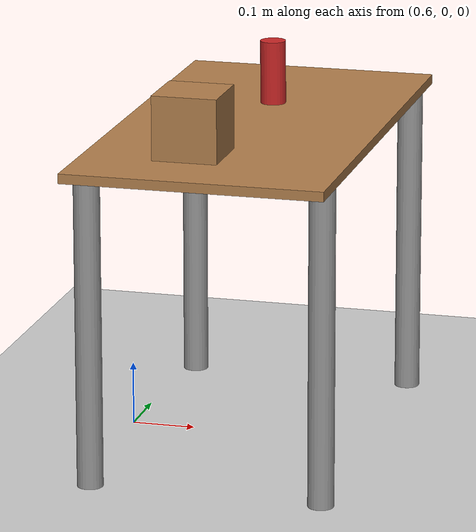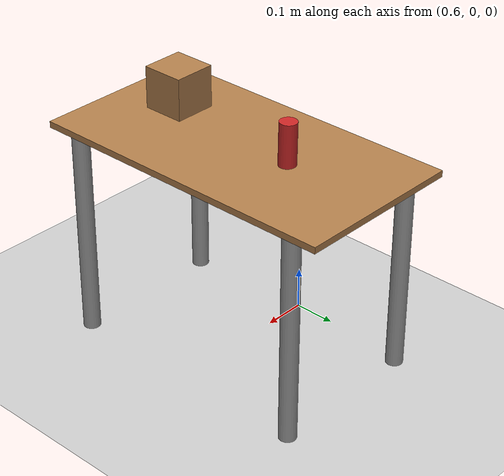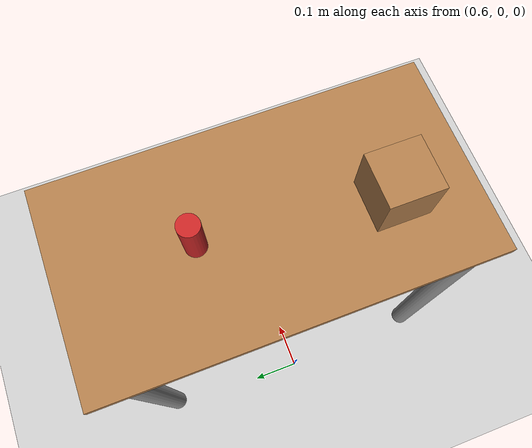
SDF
<sdf version="1.6">
 <world name="stereo_objects_world">
  <scene><ambient>0 0 0 1</ambient><shadows>0</shadows><background>0.7 0.7 0.7 1</background></scene>
  <light name="sun" type="directional">
   <pose>0 0 10 0 -0 0</pose>
   <diffuse>0.8 0.8 0.8 1</diffuse>
   <specular>0.2 0.2 0.2 1</specular>
   <attenuation>
    <range>1000</range>
    <constant>0.9</constant>
    <linear>0.01</linear>
    <quadratic>0.001</quadratic>
   </attenuation>
   <direction>-0.5 0.1 -0.9</direction>
  </light>
  <model name="ground_plane">
   <static>1</static>
   <link name="link">
    <collision name="collision">
     <geometry><plane><normal>0 0 1</normal><size>100 100</size></plane></geometry>
     <surface><friction><ode><mu>100</mu><mu2>50</mu2></ode></friction></surface>
    </collision>
    <visual name="visual">
     <cast_shadows>0</cast_shadows>
     <geometry><plane><normal>0 0 1</normal><size>100 100</size></plane></geometry>
     <material>
      <script><uri>file://media/materials/scripts/gazebo.material</uri><name>Gazebo/Grey</name></script>
     </material>
    </visual>
   </link>
  </model>
  <model name="table">
   <static>1</static>
   <link name="link">
    <collision name="surface">
     <pose>0 0 0.5 0 -0 0</pose>
     <geometry><box><size>0.75 0.4 0.015</size></box></geometry>
     <surface><friction><ode><mu>0.6</mu><mu2>0.6</mu2></ode></friction></surface>
    </collision>
    <visual name="visual1">
     <pose>0 0 0.5 0 -0 0</pose>
     <geometry><box><size>0.75 0.4 0.015</size></box></geometry>
     <material>
      <script><uri>file://media/materials/scripts/gazebo.material</uri><name>Gazebo/Wood</name></script>
     </material>
    </visual>
    <collision name="front_left_leg">
     <pose>0.3 0.18 0.25 0 -0 0</pose>
     <geometry><cylinder><radius>0.02</radius><length>0.5</length></cylinder></geometry>
    </collision>
    <visual name="front_left_leg">
     <pose>0.3 0.18 0.25 0 -0 0</pose>
     <geometry><cylinder><radius>0.02</radius><length>0.5</length></cylinder></geometry>
     <material>
      <script><uri>file://media/materials/scripts/gazebo.material</uri><name>Gazebo/Grey</name></script>
     </material>
    </visual>
    <collision name="front_right_leg">
     <pose>0.3 -0.18 0.25 0 -0 0</pose>
     <geometry><cylinder><radius>0.02</radius><length>0.5</length></cylinder></geometry>
    </collision>
    <visual name="front_right_leg">
     <pose>0.3 -0.18 0.25 0 -0 0</pose>
     <geometry><cylinder><radius>0.02</radius><length>0.5</length></cylinder></geometry>
     <material>
      <script><uri>file://media/materials/scripts/gazebo.material</uri><name>Gazebo/Grey</name></script>
     </material>
    </visual>
    <collision name="back_right_leg">
     <pose>-0.3 -0.18 0.25 0 -0 0</pose>
     <geometry><cylinder><radius>0.02</radius><length>0.5</length></cylinder></geometry>
    </collision>
    <visual name="back_right_leg">
     <pose>-0.3 -0.18 0.25 0 -0 0</pose>
     <geometry><cylinder><radius>0.02</radius><length>0.5</length></cylinder></geometry>
     <material>
      <script><uri>file://media/materials/scripts/gazebo.material</uri><name>Gazebo/Grey</name></script>
     </material>
    </visual>
    <collision name="back_left_leg">
     <pose>-0.3 0.18 0.25 0 -0 0</pose>
     <geometry><cylinder><radius>0.02</radius><length>0.5</length></cylinder></geometry>
    </collision>
    <visual name="back_left_leg">
     <pose>-0.3 0.18 0.25 0 -0 0</pose>
     <geometry><cylinder><radius>0.02</radius><length>0.5</length></cylinder></geometry>
     <material>
      <script><uri>file://media/materials/scripts/gazebo.material</uri><name>Gazebo/Grey</name></script>
     </material>
    </visual>
   </link>
   <pose>0.8 0 0 0 0 -1.57</pose>
  </model>
  <model name="wooden_peg">
   <link name="link">
    <pose>0 0 0.05 0 -0 0</pose>
    <inertial>
     <mass>0.0175</mass>
     <inertia>
      <ixx>9.74923e-06</ixx>
      <ixy>0</ixy>
      <ixz>0</ixz>
      <iyy>9.74923e-06</iyy>
      <iyz>0</iyz>
      <izz>8.31797e-07</izz>
     </inertia>
    </inertial>
    <collision name="collision">
     <geometry><cylinder><radius>0.02</radius><length>0.1</length></cylinder></geometry>
     <surface>
      <contact>
       <poissons_ratio>0.347</poissons_ratio>
       <elastic_modulus>8.8e+09</elastic_modulus>
       <ode><kp>100000</kp><kd>100</kd><max_vel>100</max_vel><min_depth>0.001</min_depth></ode>
      </contact>
      <friction>
       <torsional>
        <coefficient>1</coefficient>
        <use_patch_radius>0</use_patch_radius>
        <surface_radius>0.01</surface_radius>
       </torsional>
      </friction>
     </surface>
    </collision>
    <visual name="visual">
     <geometry><cylinder><radius>0.02</radius><length>0.1</length></cylinder></geometry>
     <material>
      <script><uri>file://media/materials/scripts/gazebo.material</uri><name>Gazebo/Red</name></script>
     </material>
    </visual>
   </link>
   <pose>0.79643 0.127349 0.507224 -0.005104 -0.006837 0.030692</pose>
  </model>
  <gravity>0 0 -9.8</gravity>
  <magnetic_field>6e-06 2.3e-05 -4.2e-05</magnetic_field>
  <atmosphere type="adiabatic"/>
  <physics name="default_physics" default="0" type="ode">
   <max_step_size>0.001</max_step_size>
   <real_time_factor>1</real_time_factor>
   <real_time_update_rate>1000</real_time_update_rate>
  </physics>
  <spherical_coordinates>
   <surface_model>EARTH_WGS84</surface_model>
   <latitude_deg>0</latitude_deg>
   <longitude_deg>0</longitude_deg>
   <elevation>0</elevation>
   <heading_deg>0</heading_deg>
  </spherical_coordinates>
  <model name="wood_cube_10cm">
   <link name="link">
    <pose>0 0 0.05 0 -0 0</pose>
    <inertial>
     <mass>0.5167</mass>
     <inertia>
      <ixx>0.000861167</ixx>
      <ixy>0</ixy>
      <ixz>0</ixz>
      <iyy>0.000861167</iyy>
      <iyz>0</iyz>
      <izz>0.000861167</izz>
     </inertia>
    </inertial>
    <collision name="collision">
     <geometry><box><size>0.1 0.1 0.1</size></box></geometry>
     <surface>
      <contact>
       <poissons_ratio>0.347</poissons_ratio>
       <elastic_modulus>8.8e+09</elastic_modulus>
       <ode><kp>100000</kp><kd>100</kd><max_vel>100</max_vel><min_depth>0.001</min_depth></ode>
      </contact>
      <friction>
       <torsional>
        <coefficient>1</coefficient>
        <use_patch_radius>0</use_patch_radius>
        <surface_radius>0.01</surface_radius>
       </torsional>
      </friction>
     </surface>
    </collision>
    <visual name="visual">
     <geometry><box><size>0.1 0.1 0.1</size></box></geometry>
     <material>
      <script><uri>file://media/materials/scripts/gazebo.material</uri><name>Gazebo/Wood</name></script>
     </material>
    </visual>
   </link>
   <pose>0.761796 -0.218553 0.506487 0 -0 0</pose>
  </model>
 </world>
</sdf>
